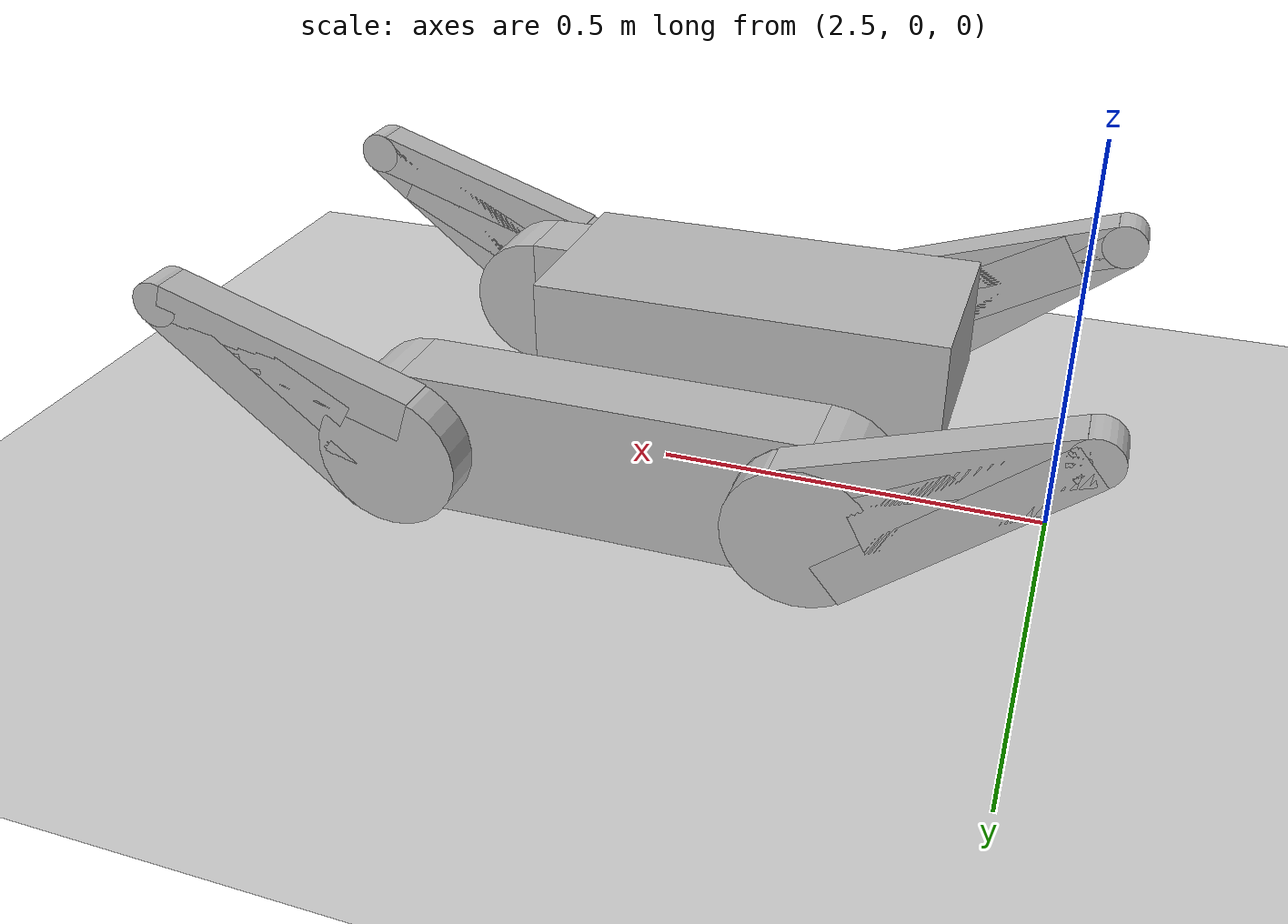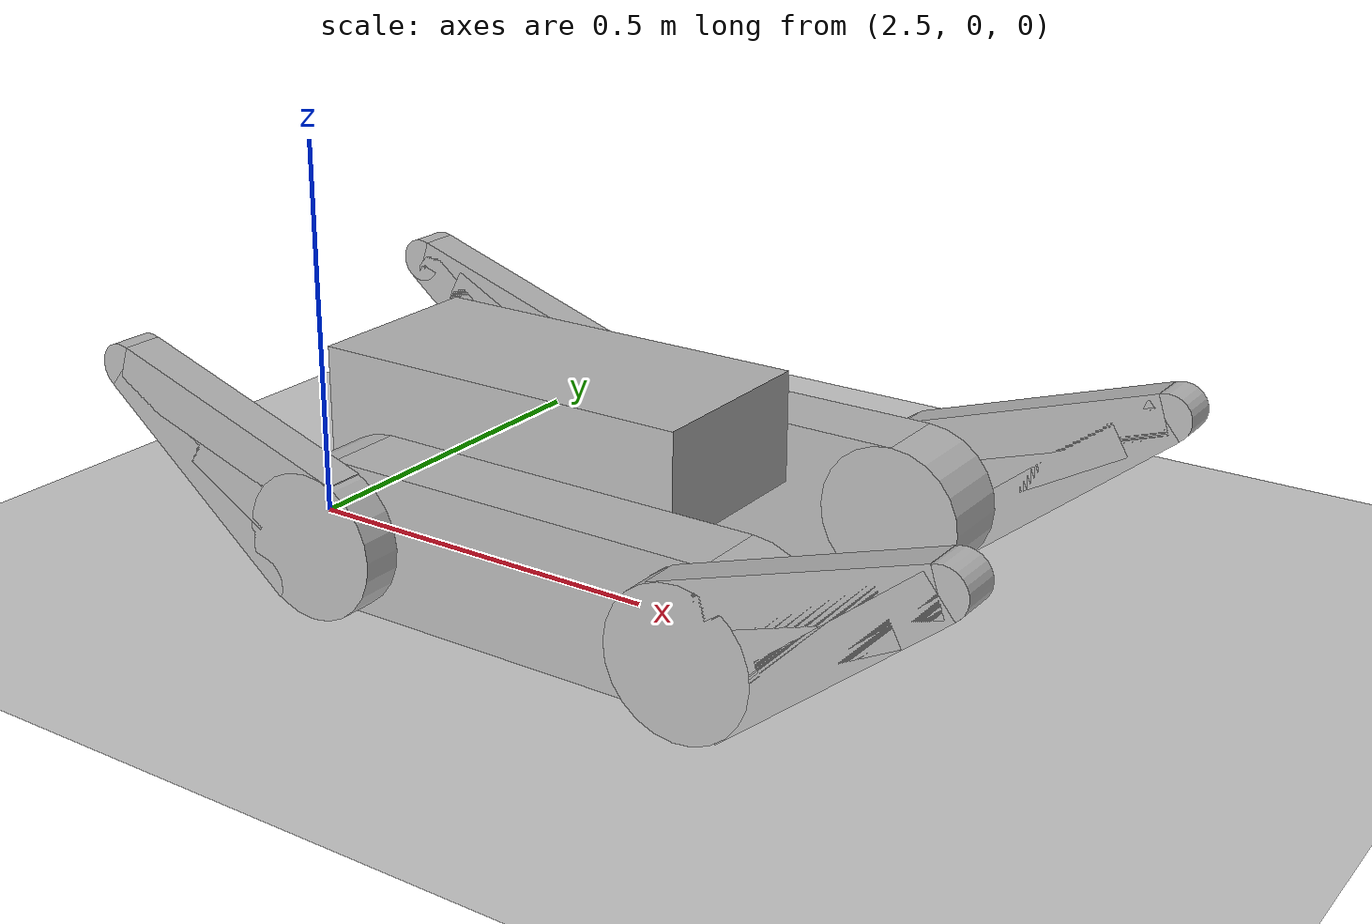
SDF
<sdf version='1.7'>
    <world name='default'>
        <physics name='4ms' type='ignored'>
            <max_step_size>0.004</max_step_size>
            <real_time_factor>1.0</real_time_factor>
        </physics>
        <plugin name='gz::sim::systems::Physics' filename='ignition-gazebo-physics-system'/>
        <plugin name='gz::sim::systems::UserCommands' filename='ignition-gazebo-user-commands-system'/>
        <plugin name='gz::sim::systems::SceneBroadcaster' filename='ignition-gazebo-scene-broadcaster-system'/>
        <scene>
            <ambient>1 1 1 1</ambient>
            <background>0.8 0.8 0.8 1</background>
            <shadows>1</shadows>
        </scene>
        <light name='sun' type='directional'>
            <cast_shadows>1</cast_shadows>
            <pose>0 0 10 0 0 0</pose>
            <diffuse>0.8 0.8 0.8 1</diffuse>
            <specular>0.8 0.8 0.8 1</specular>
            <attenuation>
                <range>1000</range>
                <constant>0.9</constant>
                <linear>0.01</linear>
                <quadratic>0.001</quadratic>
            </attenuation>
            <direction>-0.5 0.1 -0.9</direction>
        </light>
        <model name='ground_plane'>
            <static>1</static>
            <self_collide>1</self_collide>
            <link name='link'>
                <collision name='collision'>
                    <geometry>
                        <plane>
                            <normal>0 0 1</normal>
                            <size>100 100</size>
                        </plane>
                    </geometry>
                </collision>
                <visual name='visual'>
                    <geometry>
                        <plane>
                            <normal>0 0 1</normal>
                            <size>100 100</size>
                        </plane>
                    </geometry>
                    <material>
                        <ambient>0.8 0.8 0.8 1</ambient>
                        <diffuse>0.8 0.8 0.8 1</diffuse>
                        <specular>0.8 0.8 0.8 1</specular>
                    </material>
                </visual>
            </link>
        </model>
        <model name='simple'>
            <pose>3 0 0.1 0 0 0</pose>
            <link name='base_link'>
                <pose>0 0 0 0 0 0</pose>
                <inertial>
                    <pose>-0.122 0 0.118 1.5708 0 0</pose>
                    <mass>13.14</mass>
                    <inertia>
                        <ixx>0.10019</ixx>
                        <ixy>0</ixy>
                        <ixz>0</ixz>
                        <iyy>0.345043</iyy>
                        <iyz>0</iyz>
                        <izz>0.302044</izz>
                    </inertia>
                </inertial>
                <collision name='base_link_collision'>
                    <pose>-0.122 0 0.118 0 0 0</pose>
                    <geometry>
                        <box>
                            <size>0.50017 0.24093 0.139</size>
                        </box>
                    </geometry>
                </collision>
                <visual name='base_link_visual'>
                    <pose>-0.122 0 0.118 0 0 0</pose>
                    <geometry>
                        <box>
                            <size>0.50017 0.24093 0.139</size>
                        </box>
                    </geometry>
                </visual>
                <self_collide>0</self_collide>
                <gravity>1</gravity>
                <kinematic>0</kinematic>
            </link>
            <link name='left_track'>
                <pose>0 0.1985 0 0 0 0</pose>
                <inertial>
                    <pose>0 0 0.0141 0 0 0</pose>
                    <mass>6.06</mass>
                    <inertia>
                        <ixx>0.002731</ixx>
                        <ixy>0</ixy>
                        <ixz>0</ixz>
                        <iyy>0.032554</iyy>
                        <iyz>1.5e-05</iyz>
                        <izz>0.031391</izz>
                    </inertia>
                </inertial>
                <collision name='left_track_collision'>
                    <pose>0 0 0.01855 1.5708 0 1.5708</pose>
                    <geometry>
                        <box>
                            <size>0.09728 0.18094 0.5</size>
                        </box>
                    </geometry>
                    <surface>
                        <friction>
                            <ode>
                                <mu>0.7</mu>
                                <mu2>150</mu2>
                                <fdir1>0 1 0</fdir1>
                            </ode>
                        </friction>
                    </surface>
                </collision>
                <collision name='left_track_collision_1'>
                    <pose>0.25 0 0.01855 1.5708 0 0</pose>
                    <geometry>
                        <cylinder>
                            <length>0.09728</length>
                            <radius>0.09047</radius>
                        </cylinder>
                    </geometry>
                    <surface>
                        <friction>
                            <ode>
                                <mu>0.7</mu>
                                <mu2>150</mu2>
                                <fdir1>0 1 0</fdir1>
                            </ode>
                        </friction>
                    </surface>
                </collision>
                <collision name='left_track_collision_2'>
                    <pose>-0.25 0 0.01855 1.5708 0 0</pose>
                    <geometry>
                        <cylinder>
                            <length>0.09728</length>
                            <radius>0.09047</radius>
                        </cylinder>
                    </geometry>
                    <surface>
                        <friction>
                            <ode>
                                <mu>0.7</mu>
                                <mu2>150</mu2>
                                <fdir1>0 1 0</fdir1>
                            </ode>
                        </friction>
                    </surface>
                </collision>
                <visual name='left_track_visual'>
                    <pose>0 0 0.01855 1.5708 0 1.5708</pose>
                    <geometry>
                        <box>
                            <size>0.09728 0.18094 0.5</size>
                        </box>
                    </geometry>
                </visual>
                <visual name='left_track_visual_1'>
                    <pose>0.25 0 0.01855 1.5708 0 0</pose>
                    <geometry>
                        <cylinder>
                            <length>0.09728</length>
                            <radius>0.09047</radius>
                        </cylinder>
                    </geometry>
                </visual>
                <visual name='left_track_visual_2'>
                    <pose>-0.25 0 0.01855 1.5708 0 0</pose>
                    <geometry>
                        <cylinder>
                            <length>0.09728</length>
                            <radius>0.09047</radius>
                        </cylinder>
                    </geometry>
                </visual>
                <gravity>1</gravity>
                <kinematic>0</kinematic>
            </link>
            <joint name='left_track_j' type='fixed'>
                <child>left_track</child>
                <parent>base_link</parent>
            </joint>
            <link name='right_track'>
                <pose>0 -0.1985 0 0 0 0</pose>
                <inertial>
                    <pose>0 0 0.0141 0 0 0</pose>
                    <mass>6.06</mass>
                    <inertia>
                        <ixx>0.002731</ixx>
                        <ixy>0</ixy>
                        <ixz>0</ixz>
                        <iyy>0.032554</iyy>
                        <iyz>1.5e-05</iyz>
                        <izz>0.031391</izz>
                    </inertia>
                </inertial>
                <collision name='right_track_collision'>
                    <pose>0 0 0.01855 1.5708 0 1.5708</pose>
                    <geometry>
                        <box>
                            <size>0.09728 0.18094 0.5</size>
                        </box>
                    </geometry>
                    <surface>
                        <friction>
                            <ode>
                                <mu>0.7</mu>
                                <mu2>150</mu2>
                                <fdir1>0 1 0</fdir1>
                            </ode>
                        </friction>
                    </surface>
                </collision>
                <collision name='right_track_collision_1'>
                    <pose>0.25 0 0.01855 1.5708 0 0</pose>
                    <geometry>
                        <cylinder>
                            <length>0.09728</length>
                            <radius>0.09047</radius>
                        </cylinder>
                    </geometry>
                    <surface>
                        <friction>
                            <ode>
                                <mu>0.7</mu>
                                <mu2>150</mu2>
                                <fdir1>0 1 0</fdir1>
                            </ode>
                        </friction>
                    </surface>
                </collision>
                <collision name='right_track_collision_2'>
                    <pose>-0.25 0 0.01855 1.5708 0 0</pose>
                    <geometry>
                        <cylinder>
                            <length>0.09728</length>
                            <radius>0.09047</radius>
                        </cylinder>
                    </geometry>
                    <surface>
                        <friction>
                            <ode>
                                <mu>0.7</mu>
                                <mu2>150</mu2>
                                <fdir1>0 1 0</fdir1>
                            </ode>
                        </friction>
                    </surface>
                </collision>
                <visual name='right_track_visual'>
                    <pose>0 0 0.01855 1.5708 0 1.5708</pose>
                    <geometry>
                        <box>
                            <size>0.09728 0.18094 0.5</size>
                        </box>
                    </geometry>
                </visual>
                <visual name='right_track_visual_1'>
                    <pose>0.25 0 0.01855 1.5708 0 0</pose>
                    <geometry>
                        <cylinder>
                            <length>0.09728</length>
                            <radius>0.09047</radius>
                        </cylinder>
                    </geometry>
                </visual>
                <visual name='right_track_visual_2'>
                    <pose>-0.25 0 0.01855 1.5708 0 0</pose>
                    <geometry>
                        <cylinder>
                            <length>0.09728</length>
                            <radius>0.09047</radius>
                        </cylinder>
                    </geometry>
                </visual>
                <gravity>1</gravity>
                <kinematic>0</kinematic>
            </link>
            <joint name='right_track_j' type='fixed'>
                <child>right_track</child>
                <parent>base_link</parent>
            </joint>
            <link name='front_left_flipper'>
                <pose>0.25 0.272 0.0195 0 -0.5 0</pose>
                <inertial>
                    <pose>0.08 0 0 0 0 0</pose>
                    <mass>0.75</mass>
                    <inertia>
                        <ixx>0.0017491</ixx>
                        <ixy>2.8512e-07</ixy>
                        <ixz>0.0018277</ixz>
                        <iyy>0.012277</iyy>
                        <iyz>-3.6288e-07</iyz>
                        <izz>0.010941</izz>
                    </inertia>
                </inertial>
                <collision name='front_left_flipper_collision_large_wheel_collision'>
                    <pose>0 0 0 1.5708 0 0</pose>
                    <geometry>
                        <cylinder>
                            <length>0.04981</length>
                            <radius>0.089</radius>
                        </cylinder>
                    </geometry>
                    <surface>
                        <friction>
                            <ode>
                                <mu>0.7</mu>
                                <mu2>150</mu2>
                                <fdir1>0 1 0</fdir1>
                            </ode>
                        </friction>
                        <contact>
                            <ode/>
                        </contact>
                    </surface>
                    <max_contacts>20</max_contacts>
                </collision>
                <collision name='front_left_flipper_collision_small_wheel_collision_1'>
                    <pose>0.33 0 0 1.5708 0 0</pose>
                    <geometry>
                        <cylinder>
                            <length>0.04981</length>
                            <radius>0.029</radius>
                        </cylinder>
                    </geometry>
                    <surface>
                        <friction>
                            <ode>
                                <mu>0.7</mu>
                                <mu2>150</mu2>
                                <fdir1>0 1 0</fdir1>
                            </ode>
                        </friction>
                        <contact>
                            <ode/>
                        </contact>
                    </surface>
                    <max_contacts>20</max_contacts>
                </collision>
                <collision name='front_left_flipper_collision_top_bar_collision_2'>
                    <pose>0.165 0 0.0325 0 0.184162 0</pose>
                    <geometry>
                        <box>
                            <size>0.33 0.04981 0.055</size>
                        </box>
                    </geometry>
                    <surface>
                        <friction>
                            <ode>
                                <mu>0.7</mu>
                                <mu2>150</mu2>
                                <fdir1>0 1 0</fdir1>
                            </ode>
                        </friction>
                        <contact>
                            <ode/>
                        </contact>
                    </surface>
                    <max_contacts>20</max_contacts>
                </collision>
                <collision name='front_left_flipper_collision_bottom_bar_collision_3'>
                    <pose>0.165 0 -0.0325 0 -0.184162 0</pose>
                    <geometry>
                        <box>
                            <size>0.33 0.04981 0.055</size>
                        </box>
                    </geometry>
                    <surface>
                        <friction>
                            <ode>
                                <mu>0.7</mu>
                                <mu2>150</mu2>
                                <fdir1>0 1 0</fdir1>
                            </ode>
                        </friction>
                        <contact>
                            <ode/>
                        </contact>
                    </surface>
                    <max_contacts>20</max_contacts>
                </collision>
                <collision name='front_left_flipper_collision_middle_bar_collision_4'>
                    <pose>0.166 0 0.004 0 -0.02 0</pose>
                    <geometry>
                        <box>
                            <size>0.2 0.04981 0.07</size>
                        </box>
                    </geometry>
                    <surface>
                        <friction>
                            <ode>
                                <mu>0.7</mu>
                                <mu2>150</mu2>
                                <fdir1>0 1 0</fdir1>
                            </ode>
                        </friction>
                        <contact>
                            <ode/>
                        </contact>
                    </surface>
                    <max_contacts>20</max_contacts>
                </collision>
                <visual name='front_left_flipper_visual_large_wheel_visual'>
                    <pose>0 0 0 1.5708 0 0</pose>
                    <geometry>
                        <cylinder>
                            <length>0.04981</length>
                            <radius>0.089</radius>
                        </cylinder>
                    </geometry>
                </visual>
                <visual name='front_left_flipper_visual_small_wheel_visual_1'>
                    <pose>0.33 0 0 1.5708 0 0</pose>
                    <geometry>
                        <cylinder>
                            <length>0.04981</length>
                            <radius>0.029</radius>
                        </cylinder>
                    </geometry>
                </visual>
                <visual name='front_left_flipper_visual_top_bar_visual_2'>
                    <pose>0.165 0 0.0325 0 0.184162 0</pose>
                    <geometry>
                        <box>
                            <size>0.33 0.04981 0.055</size>
                        </box>
                    </geometry>
                </visual>
                <visual name='front_left_flipper_visual_bottom_bar_visual_3'>
                    <pose>0.165 0 -0.0325 0 -0.184162 0</pose>
                    <geometry>
                        <box>
                            <size>0.33 0.04981 0.055</size>
                        </box>
                    </geometry>
                </visual>
                <visual name='front_left_flipper_visual_middle_bar_visual_4'>
                    <pose>0.166 0 0.004 0 -0.02 0</pose>
                    <geometry>
                        <box>
                            <size>0.2 0.04981 0.07</size>
                        </box>
                    </geometry>
                </visual>
                <gravity>1</gravity>
                <velocity_decay/>
                <self_collide>1</self_collide>
                <kinematic>0</kinematic>
            </link>
            <joint name='front_left_flipper_j' type='revolute'>
                <child>front_left_flipper</child>
                <parent>left_track</parent>
                <axis>
                    <xyz expressed_in='__model__'>0 1 0</xyz>
                    <limit>
                        <lower>0</lower>
                        <upper>0</upper>
                    </limit>
                    <dynamics>
                        <spring_reference>0</spring_reference>
                        <spring_stiffness>0</spring_stiffness>
                    </dynamics>
                </axis>
                <physics>
                    <ode>
                        <implicit_spring_damper>1</implicit_spring_damper>
                        <cfm_damping>1</cfm_damping>
                        <limit>
                            <cfm>0</cfm>
                            <erp>0.2</erp>
                        </limit>
                    </ode>
                </physics>
            </joint>
            <link name='rear_left_flipper'>
                <pose>-0.25 0.272 0.0195 3.14159 -0.5 3.14159</pose>
                <inertial>
                    <pose>0.08 0 0 0 0 0</pose>
                    <mass>0.75</mass>
                    <inertia>
                        <ixx>0.0017491</ixx>
                        <ixy>2.8512e-07</ixy>
                        <ixz>0.0018277</ixz>
                        <iyy>0.012277</iyy>
                        <iyz>-3.6288e-07</iyz>
                        <izz>0.010941</izz>
                    </inertia>
                </inertial>
                <collision name='rear_left_flipper_collision_large_wheel_collision'>
                    <pose>0 0 0 1.5708 0 0</pose>
                    <geometry>
                        <cylinder>
                            <length>0.04981</length>
                            <radius>0.089</radius>
                        </cylinder>
                    </geometry>
                    <surface>
                        <friction>
                            <ode>
                                <mu>0.7</mu>
                                <mu2>150</mu2>
                                <fdir1>0 1 0</fdir1>
                            </ode>
                        </friction>
                        <contact>
                            <ode/>
                        </contact>
                    </surface>
                    <max_contacts>20</max_contacts>
                </collision>
                <collision name='rear_left_flipper_collision_small_wheel_collision_1'>
                    <pose>0.33 0 0 1.5708 0 0</pose>
                    <geometry>
                        <cylinder>
                            <length>0.04981</length>
                            <radius>0.029</radius>
                        </cylinder>
                    </geometry>
                    <surface>
                        <friction>
                            <ode>
                                <mu>0.7</mu>
                                <mu2>150</mu2>
                                <fdir1>0 1 0</fdir1>
                            </ode>
                        </friction>
                        <contact>
                            <ode/>
                        </contact>
                    </surface>
                    <max_contacts>20</max_contacts>
                </collision>
                <collision name='rear_left_flipper_collision_top_bar_collision_2'>
                    <pose>0.165 0 0.0325 0 0.184162 0</pose>
                    <geometry>
                        <box>
                            <size>0.33 0.04981 0.055</size>
                        </box>
                    </geometry>
                    <surface>
                        <friction>
                            <ode>
                                <mu>0.7</mu>
                                <mu2>150</mu2>
                                <fdir1>0 1 0</fdir1>
                            </ode>
                        </friction>
                        <contact>
                            <ode/>
                        </contact>
                    </surface>
                    <max_contacts>20</max_contacts>
                </collision>
                <collision name='rear_left_flipper_collision_bottom_bar_collision_3'>
                    <pose>0.165 0 -0.0325 0 -0.184162 0</pose>
                    <geometry>
                        <box>
                            <size>0.33 0.04981 0.055</size>
                        </box>
                    </geometry>
                    <surface>
                        <friction>
                            <ode>
                                <mu>0.7</mu>
                                <mu2>150</mu2>
                                <fdir1>0 1 0</fdir1>
                            </ode>
                        </friction>
                        <contact>
                            <ode/>
                        </contact>
                    </surface>
                    <max_contacts>20</max_contacts>
                </collision>
                <collision name='rear_left_flipper_collision_middle_bar_collision_4'>
                    <pose>0.166 0 0.004 0 -0.02 0</pose>
                    <geometry>
                        <box>
                            <size>0.2 0.04981 0.07</size>
                        </box>
                    </geometry>
                    <surface>
                        <friction>
                            <ode>
                                <mu>0.7</mu>
                                <mu2>150</mu2>
                                <fdir1>0 1 0</fdir1>
                            </ode>
                        </friction>
                        <contact>
                            <ode/>
                        </contact>
                    </surface>
                    <max_contacts>20</max_contacts>
                </collision>
                <visual name='rear_left_flipper_visual_large_wheel_visual'>
                    <pose>0 0 0 1.5708 0 0</pose>
                    <geometry>
                        <cylinder>
                            <length>0.04981</length>
                            <radius>0.089</radius>
                        </cylinder>
                    </geometry>
                </visual>
                <visual name='rear_left_flipper_visual_small_wheel_visual_1'>
                    <pose>0.33 0 0 1.5708 0 0</pose>
                    <geometry>
                        <cylinder>
                            <length>0.04981</length>
                            <radius>0.029</radius>
                        </cylinder>
                    </geometry>
                </visual>
                <visual name='rear_left_flipper_visual_top_bar_visual_2'>
                    <pose>0.165 0 0.0325 0 0.184162 0</pose>
                    <geometry>
                        <box>
                            <size>0.33 0.04981 0.055</size>
                        </box>
                    </geometry>
                </visual>
                <visual name='rear_left_flipper_visual_bottom_bar_visual_3'>
                    <pose>0.165 0 -0.0325 0 -0.184162 0</pose>
                    <geometry>
                        <box>
                            <size>0.33 0.04981 0.055</size>
                        </box>
                    </geometry>
                </visual>
                <visual name='rear_left_flipper_visual_middle_bar_visual_4'>
                    <pose>0.166 0 0.004 0 -0.02 0</pose>
                    <geometry>
                        <box>
                            <size>0.2 0.04981 0.07</size>
                        </box>
                    </geometry>
                </visual>
                <gravity>1</gravity>
                <velocity_decay/>
                <self_collide>1</self_collide>
                <kinematic>0</kinematic>
            </link>
            <joint name='rear_left_flipper_j' type='revolute'>
                <child>rear_left_flipper</child>
                <parent>left_track</parent>
                <axis>
                    <xyz expressed_in='__model__'>0 1 0</xyz>
                    <limit>
                        <lower>0</lower>
                        <upper>0</upper>
                    </limit>
                    <dynamics>
                        <spring_reference>0</spring_reference>
                        <spring_stiffness>0</spring_stiffness>
                    </dynamics>
                </axis>
                <physics>
                    <ode>
                        <implicit_spring_damper>1</implicit_spring_damper>
                        <cfm_damping>1</cfm_damping>
                        <limit>
                            <cfm>0</cfm>
                            <erp>0.2</erp>
                        </limit>
                    </ode>
                </physics>
            </joint>
            <link name='front_right_flipper'>
                <pose>0.25 -0.272 0.0195 3.14159 0.5 3.14159</pose>
                <inertial>
                    <pose>-0.08 0 0 0 0 0</pose>
                    <mass>0.75</mass>
                    <inertia>
                        <ixx>0.0017491</ixx>
                        <ixy>2.8512e-07</ixy>
                        <ixz>0.0018277</ixz>
                        <iyy>0.012277</iyy>
                        <iyz>-3.6288e-07</iyz>
                        <izz>0.010941</izz>
                    </inertia>
                </inertial>
                <collision name='front_right_flipper_collision_large_wheel_collision'>
                    <pose>0 0 0 1.5708 0 0</pose>
                    <geometry>
                        <cylinder>
                            <length>0.04981</length>
                            <radius>0.089</radius>
                        </cylinder>
                    </geometry>
                    <surface>
                        <friction>
                            <ode>
                                <mu>0.7</mu>
                                <mu2>150</mu2>
                                <fdir1>0 1 0</fdir1>
                            </ode>
                        </friction>
                        <contact>
                            <ode/>
                        </contact>
                    </surface>
                    <max_contacts>20</max_contacts>
                </collision>
                <collision name='front_right_flipper_collision_small_wheel_collision_1'>
                    <pose>-0.33 0 0 1.5708 0 0</pose>
                    <geometry>
                        <cylinder>
                            <length>0.04981</length>
                            <radius>0.029</radius>
                        </cylinder>
                    </geometry>
                    <surface>
                        <friction>
                            <ode>
                                <mu>0.7</mu>
                                <mu2>150</mu2>
                                <fdir1>0 1 0</fdir1>
                            </ode>
                        </friction>
                        <contact>
                            <ode/>
                        </contact>
                    </surface>
                    <max_contacts>20</max_contacts>
                </collision>
                <collision name='front_right_flipper_collision_top_bar_collision_2'>
                    <pose>-0.165 0 0.0325 0 0.184162 -3.14159</pose>
                    <geometry>
                        <box>
                            <size>0.33 0.04981 0.055</size>
                        </box>
                    </geometry>
                    <surface>
                        <friction>
                            <ode>
                                <mu>0.7</mu>
                                <mu2>150</mu2>
                                <fdir1>0 1 0</fdir1>
                            </ode>
                        </friction>
                        <contact>
                            <ode/>
                        </contact>
                    </surface>
                    <max_contacts>20</max_contacts>
                </collision>
                <collision name='front_right_flipper_collision_bottom_bar_collision_3'>
                    <pose>-0.165 0 -0.0325 0 -0.184162 -3.14159</pose>
                    <geometry>
                        <box>
                            <size>0.33 0.04981 0.055</size>
                        </box>
                    </geometry>
                    <surface>
                        <friction>
                            <ode>
                                <mu>0.7</mu>
                                <mu2>150</mu2>
                                <fdir1>0 1 0</fdir1>
                            </ode>
                        </friction>
                        <contact>
                            <ode/>
                        </contact>
                    </surface>
                    <max_contacts>20</max_contacts>
                </collision>
                <collision name='front_right_flipper_collision_middle_bar_collision_4'>
                    <pose>-0.166 0 0.004 0 -0.02 -3.14159</pose>
                    <geometry>
                        <box>
                            <size>0.2 0.04981 0.07</size>
                        </box>
                    </geometry>
                    <surface>
                        <friction>
                            <ode>
                                <mu>0.7</mu>
                                <mu2>150</mu2>
                                <fdir1>0 1 0</fdir1>
                            </ode>
                        </friction>
                        <contact>
                            <ode/>
                        </contact>
                    </surface>
                    <max_contacts>20</max_contacts>
                </collision>
                <visual name='front_right_flipper_visual_large_wheel_visual'>
                    <pose>0 0 0 1.5708 0 0</pose>
                    <geometry>
                        <cylinder>
                            <length>0.04981</length>
                            <radius>0.089</radius>
                        </cylinder>
                    </geometry>
                </visual>
                <visual name='front_right_flipper_visual_small_wheel_visual_1'>
                    <pose>-0.33 0 0 1.5708 0 0</pose>
                    <geometry>
                        <cylinder>
                            <length>0.04981</length>
                            <radius>0.029</radius>
                        </cylinder>
                    </geometry>
                </visual>
                <visual name='front_right_flipper_visual_top_bar_visual_2'>
                    <pose>-0.165 0 0.0325 0 0.184162 -3.14159</pose>
                    <geometry>
                        <box>
                            <size>0.33 0.04981 0.055</size>
                        </box>
                    </geometry>
                </visual>
                <visual name='front_right_flipper_visual_bottom_bar_visual_3'>
                    <pose>-0.165 0 -0.0325 0 -0.184162 -3.14159</pose>
                    <geometry>
                        <box>
                            <size>0.33 0.04981 0.055</size>
                        </box>
                    </geometry>
                </visual>
                <visual name='front_right_flipper_visual_middle_bar_visual_4'>
                    <pose>-0.166 0 0.004 0 -0.02 -3.14159</pose>
                    <geometry>
                        <box>
                            <size>0.2 0.04981 0.07</size>
                        </box>
                    </geometry>
                </visual>
                <gravity>1</gravity>
                <velocity_decay/>
                <self_collide>1</self_collide>
                <kinematic>0</kinematic>
            </link>
            <joint name='front_right_flipper_j' type='revolute'>
                <child>front_right_flipper</child>
                <parent>right_track</parent>
                <axis>
                    <xyz expressed_in='__model__'>0 1 0</xyz>
                    <limit>
                        <lower>0</lower>
                        <upper>0</upper>
                    </limit>
                    <dynamics>
                        <spring_reference>0</spring_reference>
                        <spring_stiffness>0</spring_stiffness>
                    </dynamics>
                </axis>
                <physics>
                    <ode>
                        <implicit_spring_damper>1</implicit_spring_damper>
                        <cfm_damping>1</cfm_damping>
                        <limit>
                            <cfm>0</cfm>
                            <erp>0.2</erp>
                        </limit>
                    </ode>
                </physics>
            </joint>
            <link name='rear_right_flipper'>
                <pose>-0.25 -0.272 0.0195 0 0.5 0</pose>
                <inertial>
                    <pose>-0.08 0 0 0 0 0</pose>
                    <mass>0.75</mass>
                    <inertia>
                        <ixx>0.0017491</ixx>
                        <ixy>2.8512e-07</ixy>
                        <ixz>0.0018277</ixz>
                        <iyy>0.012277</iyy>
                        <iyz>-3.6288e-07</iyz>
                        <izz>0.010941</izz>
                    </inertia>
                </inertial>
                <collision name='rear_right_flipper_collision_large_wheel_collision'>
                    <pose>0 0 0 1.5708 0 0</pose>
                    <geometry>
                        <cylinder>
                            <length>0.04981</length>
                            <radius>0.089</radius>
                        </cylinder>
                    </geometry>
                    <surface>
                        <friction>
                            <ode>
                                <mu>0.7</mu>
                                <mu2>150</mu2>
                                <fdir1>0 1 0</fdir1>
                            </ode>
                        </friction>
                        <contact>
                            <ode/>
                        </contact>
                    </surface>
                    <max_contacts>20</max_contacts>
                </collision>
                <collision name='rear_right_flipper_collision_small_wheel_collision_1'>
                    <pose>-0.33 0 0 1.5708 0 0</pose>
                    <geometry>
                        <cylinder>
                            <length>0.04981</length>
                            <radius>0.029</radius>
                        </cylinder>
                    </geometry>
                    <surface>
                        <friction>
                            <ode>
                                <mu>0.7</mu>
                                <mu2>150</mu2>
                                <fdir1>0 1 0</fdir1>
                            </ode>
                        </friction>
                        <contact>
                            <ode/>
                        </contact>
                    </surface>
                    <max_contacts>20</max_contacts>
                </collision>
                <collision name='rear_right_flipper_collision_top_bar_collision_2'>
                    <pose>-0.165 0 0.0325 0 0.184162 -3.14159</pose>
                    <geometry>
                        <box>
                            <size>0.33 0.04981 0.055</size>
                        </box>
                    </geometry>
                    <surface>
                        <friction>
                            <ode>
                                <mu>0.7</mu>
                                <mu2>150</mu2>
                                <fdir1>0 1 0</fdir1>
                            </ode>
                        </friction>
                        <contact>
                            <ode/>
                        </contact>
                    </surface>
                    <max_contacts>20</max_contacts>
                </collision>
                <collision name='rear_right_flipper_collision_bottom_bar_collision_3'>
                    <pose>-0.165 0 -0.0325 0 -0.184162 -3.14159</pose>
                    <geometry>
                        <box>
                            <size>0.33 0.04981 0.055</size>
                        </box>
                    </geometry>
                    <surface>
                        <friction>
                            <ode>
                                <mu>0.7</mu>
                                <mu2>150</mu2>
                                <fdir1>0 1 0</fdir1>
                            </ode>
                        </friction>
                        <contact>
                            <ode/>
                        </contact>
                    </surface>
                    <max_contacts>20</max_contacts>
                </collision>
                <collision name='rear_right_flipper_collision_middle_bar_collision_4'>
                    <pose>-0.166 0 0.004 0 -0.02 -3.14159</pose>
                    <geometry>
                        <box>
                            <size>0.2 0.04981 0.07</size>
                        </box>
                    </geometry>
                    <surface>
                        <friction>
                            <ode>
                                <mu>0.7</mu>
                                <mu2>150</mu2>
                                <fdir1>0 1 0</fdir1>
                            </ode>
                        </friction>
                        <contact>
                            <ode/>
                        </contact>
                    </surface>
                    <max_contacts>20</max_contacts>
                </collision>
                <visual name='rear_right_flipper_visual_large_wheel_visual'>
                    <pose>0 0 0 1.5708 0 0</pose>
                    <geometry>
                        <cylinder>
                            <length>0.04981</length>
                            <radius>0.089</radius>
                        </cylinder>
                    </geometry>
                </visual>
                <visual name='rear_right_flipper_visual_small_wheel_visual_1'>
                    <pose>-0.33 0 0 1.5708 0 0</pose>
                    <geometry>
                        <cylinder>
                            <length>0.04981</length>
                            <radius>0.029</radius>
                        </cylinder>
                    </geometry>
                </visual>
                <visual name='rear_right_flipper_visual_top_bar_visual_2'>
                    <pose>-0.165 0 0.0325 0 0.184162 -3.14159</pose>
                    <geometry>
                        <box>
                            <size>0.33 0.04981 0.055</size>
                        </box>
                    </geometry>
                </visual>
                <visual name='rear_right_flipper_visual_bottom_bar_visual_3'>
                    <pose>-0.165 0 -0.0325 0 -0.184162 -3.14159</pose>
                    <geometry>
                        <box>
                            <size>0.33 0.04981 0.055</size>
                        </box>
                    </geometry>
                </visual>
                <visual name='rear_right_flipper_visual_middle_bar_visual_4'>
                    <pose>-0.166 0 0.004 0 -0.02 -3.14159</pose>
                    <geometry>
                        <box>
                            <size>0.2 0.04981 0.07</size>
                        </box>
                    </geometry>
                </visual>
                <gravity>1</gravity>
                <velocity_decay/>
                <self_collide>1</self_collide>
                <kinematic>0</kinematic>
            </link>
            <joint name='rear_right_flipper_j' type='revolute'>
                <child>rear_right_flipper</child>
                <parent>right_track</parent>
                <axis>
                    <xyz expressed_in='__model__'>0 1 0</xyz>
                    <limit>
                        <lower>0</lower>
                        <upper>0</upper>
                    </limit>
                    <dynamics>
                        <spring_reference>0</spring_reference>
                        <spring_stiffness>0</spring_stiffness>
                    </dynamics>
                </axis>
                <physics>
                    <ode>
                        <implicit_spring_damper>1</implicit_spring_damper>
                        <cfm_damping>1</cfm_damping>
                        <limit>
                            <cfm>0</cfm>
                            <erp>0.2</erp>
                        </limit>
                    </ode>
                </physics>
            </joint>

            <plugin name="gz::sim::systems::TrackedVehicle" filename="ignition-gazebo-tracked-vehicle-system">
                <left_track><link>left_track</link></left_track>
                <left_track><link>front_left_flipper</link></left_track>
                <left_track><link>rear_left_flipper</link></left_track>
                <right_track><link>right_track</link></right_track>
                <right_track><link>front_right_flipper</link></right_track>
                <right_track><link>rear_right_flipper</link></right_track>
                <tracks_separation>0.4</tracks_separation>
                <tracks_height>0.18094</tracks_height>
                <steering_efficiency>0.5</steering_efficiency>
            </plugin>
            <plugin name='gz::sim::systems::TrackController' filename='libignition-gazebo-track-controller-system.so'>
                <link>left_track</link>
                <min_velocity>-1.0</min_velocity>
                <max_velocity>1.0</max_velocity>
            </plugin>
            <plugin name='gz::sim::systems::TrackController' filename='libignition-gazebo-track-controller-system.so'>
                <link>right_track</link>
                <min_velocity>-1.0</min_velocity>
                <max_velocity>1.0</max_velocity>
            </plugin>
            <plugin name='gz::sim::systems::TrackController' filename='libignition-gazebo-track-controller-system.so'>
                <link>front_left_flipper</link>
                <min_velocity>-1.0</min_velocity>
                <max_velocity>1.0</max_velocity>
            </plugin>
            <plugin name='gz::sim::systems::TrackController' filename='libignition-gazebo-track-controller-system.so'>
                <link>rear_left_flipper</link>
                <min_velocity>-1.0</min_velocity>
                <max_velocity>1.0</max_velocity>
            </plugin>
            <plugin name='gz::sim::systems::TrackController' filename='libignition-gazebo-track-controller-system.so'>
                <link>front_right_flipper</link>
                <min_velocity>-1.0</min_velocity>
                <max_velocity>1.0</max_velocity>
            </plugin>
            <plugin name='gz::sim::systems::TrackController' filename='libignition-gazebo-track-controller-system.so'>
                <link>rear_right_flipper</link>
                <min_velocity>-1.0</min_velocity>
                <max_velocity>1.0</max_velocity>
            </plugin>

            <!-- Moving Forward: W -->
            <plugin filename="libignition-gazebo-triggered-publisher-system.so"
                    name="gz::sim::systems::TriggeredPublisher">
                <input type="ignition.msgs.Int32" topic="/keyboard/keypress">
                    <match field="data">87</match>
                </input>
                <output type="ignition.msgs.Twist" topic="/model/simple/cmd_vel">
                    linear: {x: 1.0}, angular: {z: 0.0}
                </output>
            </plugin>

            <!-- Moving Backward: X -->
            <plugin filename="libignition-gazebo-triggered-publisher-system.so"
                    name="gz::sim::systems::TriggeredPublisher">
                <input type="ignition.msgs.Int32" topic="/keyboard/keypress">
                    <match field="data">88</match>
                </input>
                <output type="ignition.msgs.Twist" topic="/model/simple/cmd_vel">
                    linear: {x: -1.0}, angular: {z: 0.0}
                </output>
            </plugin>

            <!-- Stop: S -->
            <plugin filename="libignition-gazebo-triggered-publisher-system.so"
                    name="gz::sim::systems::TriggeredPublisher">
                <input type="ignition.msgs.Int32" topic="/keyboard/keypress">
                    <match field="data">83</match>
                </input>
                <output type="ignition.msgs.Twist" topic="/model/simple/cmd_vel">
                    linear: {x: 0.0}, angular: {z: 0.0}
                </output>
            </plugin>

            <!-- Left: A -->
            <plugin filename="libignition-gazebo-triggered-publisher-system.so"
                    name="gz::sim::systems::TriggeredPublisher">
                <input type="ignition.msgs.Int32" topic="/keyboard/keypress">
                    <match field="data">65</match>
                </input>
                <output type="ignition.msgs.Twist" topic="/model/simple/cmd_vel">
                    linear: {x: 0.0}, angular: {z: 1.0}
                </output>
            </plugin>

            <!-- Right: D -->
            <plugin filename="libignition-gazebo-triggered-publisher-system.so"
                    name="gz::sim::systems::TriggeredPublisher">
                <input type="ignition.msgs.Int32" topic="/keyboard/keypress">
                    <match field="data">68</match>
                </input>
                <output type="ignition.msgs.Twist" topic="/model/simple/cmd_vel">
                    linear: {x: 0.0}, angular: {z: -1.0}
                </output>
            </plugin>

            <!-- Forward Left: Q -->
            <plugin filename="libignition-gazebo-triggered-publisher-system.so"
                    name="gz::sim::systems::TriggeredPublisher">
                <input type="ignition.msgs.Int32" topic="/keyboard/keypress">
                    <match field="data">81</match>
                </input>
                <output type="ignition.msgs.Twist" topic="/model/simple/cmd_vel">
                    linear: {x: 1.0}, angular: {z: 1.0}
                </output>
            </plugin>

            <!-- Forward Right: E -->
            <plugin filename="libignition-gazebo-triggered-publisher-system.so"
                    name="gz::sim::systems::TriggeredPublisher">
                <input type="ignition.msgs.Int32" topic="/keyboard/keypress">
                    <match field="data">69</match>
                </input>
                <output type="ignition.msgs.Twist" topic="/model/simple/cmd_vel">
                    linear: {x: 1.0}, angular: {z: -1.0}
                </output>
            </plugin>

            <!-- Back Left: Z -->
            <plugin filename="libignition-gazebo-triggered-publisher-system.so"
                    name="gz::sim::systems::TriggeredPublisher">
                <input type="ignition.msgs.Int32" topic="/keyboard/keypress">
                    <match field="data">90</match>
                </input>
                <output type="ignition.msgs.Twist" topic="/model/simple/cmd_vel">
                    linear: {x: -1.0}, angular: {z: 1.0}
                </output>
            </plugin>

            <!-- Back Right: C -->
            <plugin filename="libignition-gazebo-triggered-publisher-system.so"
                    name="gz::sim::systems::TriggeredPublisher">
                <input type="ignition.msgs.Int32" topic="/keyboard/keypress">
                    <match field="data">67</match>
                </input>
                <output type="ignition.msgs.Twist" topic="/model/simple/cmd_vel">
                    linear: {x: -1.0}, angular: {z: -1.0}
                </output>
            </plugin>
        </model>

        <gravity>0 0 -9.8</gravity>
        <magnetic_field>6e-06 2.3e-05 -4.2e-05</magnetic_field>
        <atmosphere type='adiabatic'/>
    </world>
</sdf>
